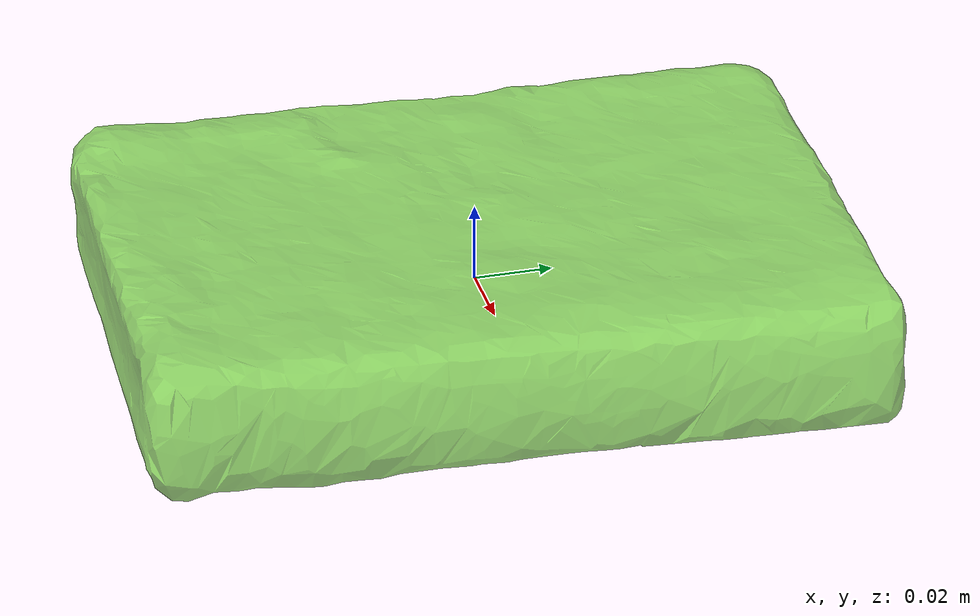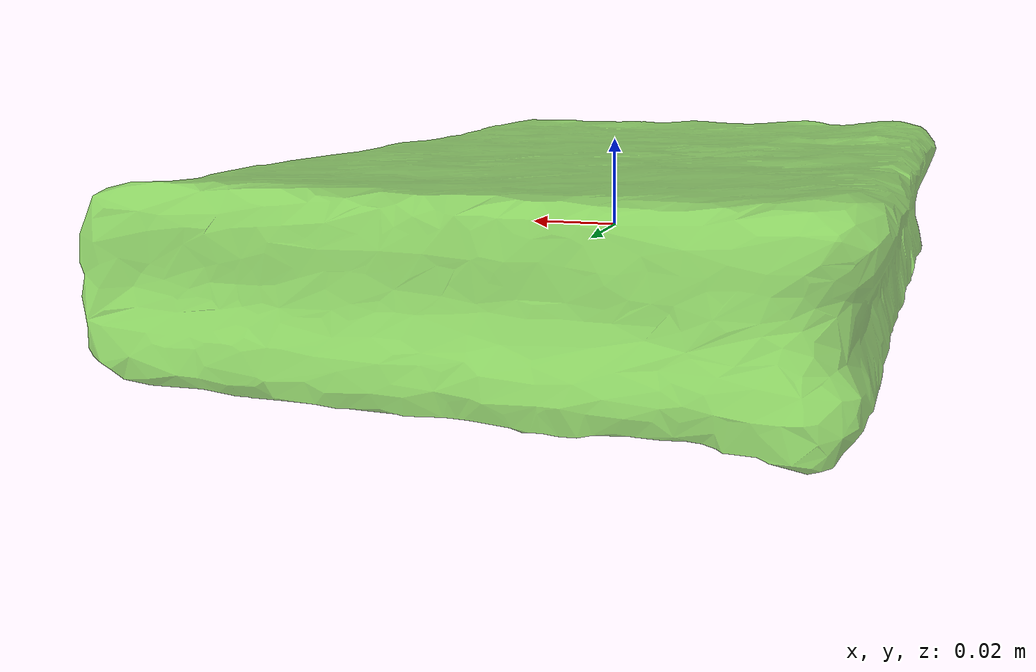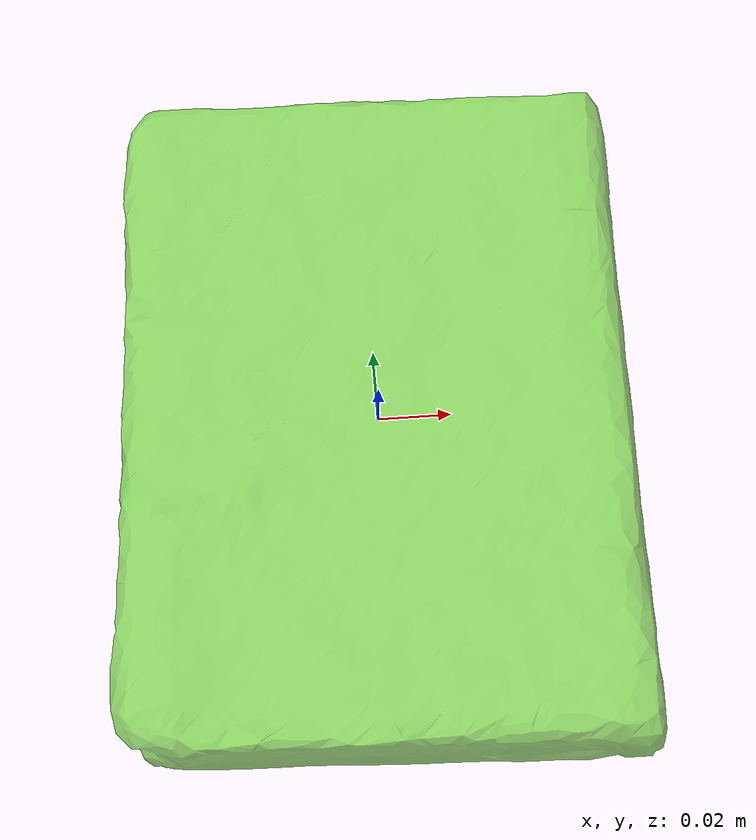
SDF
<?xml version='1.0' encoding='UTF-8'?>
<!-- This SDF was autogenerated by obj_to_drake_sdf.py -->
<sdf version="1.7">
  <model name="book">
    <link name="book">
      <inertial>
        <pose>0 0 0 0 0 0</pose>
        <mass>0.05</mass>
        <inertia>
          <ixx>0.00014781244</ixx>
          <iyy>7.9786603e-05</iyy>
          <izz>0.00021689782</izz>
          <ixy>-3.2078365e-06</ixy>
          <ixz>3.2602427e-07</ixz>
          <iyz>-6.2366726e-07</iyz>
        </inertia>
      </inertial>
      <visual name="convex_0">
        <pose>0 0 0 0 0 0</pose>
        <geometry>
          <mesh>
            <uri>book.obj</uri>
          </mesh>
        </geometry>
        <material>
          <diffuse>0.39215686274509803 0.7843137254901961 0.17254901960784313 0.7</diffuse>
        </material>
      </visual>
    </link>
  </model>
</sdf>
